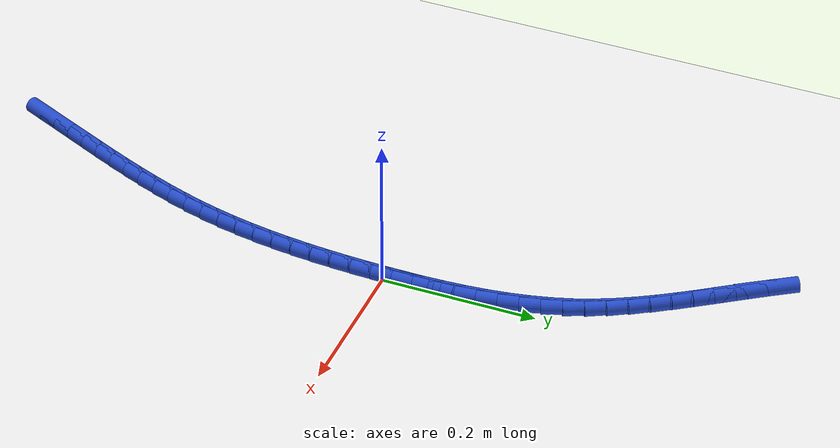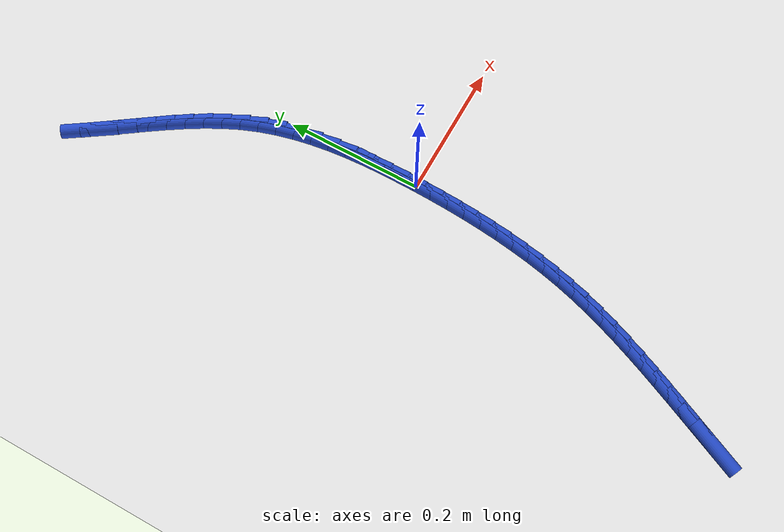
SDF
<sdf version="1.6">
 <world name="default">
  <model name="ground_plane">
   <static>1</static>
   <link name="link">
    <collision name="collision">
     <geometry><plane><normal>0 0 1</normal><size>100 100</size></plane></geometry>
     <surface><friction><ode><mu>100</mu><mu2>50</mu2></ode></friction></surface>
    </collision>
    <visual name="visual">
     <cast_shadows>0</cast_shadows>
     <geometry><plane><normal>0 0 1</normal><size>100 100</size></plane></geometry>
     <material>
      <script><uri>file://media/materials/scripts/gazebo.material</uri><name>Gazebo/WhiteGlow</name></script>
     </material>
    </visual>
   </link>
  </model>
  <model name="line">
   <link name="link_0">
    <pose>7.589415207398531e-18 -4.85722573273506e-17 0.01 0 1.57 1.5559141283545928</pose>
    <collision name="collision">
     <geometry><cylinder><radius>0.01</radius><length>0.08</length></cylinder></geometry>
    </collision>
    <visual name="visual">
     <material>
      <script><name>Gazebo/Blue</name><uri>file://media/materials/scripts/gazebo.material</uri></script>
     </material>
     <geometry><cylinder><radius>0.01</radius><length>0.08</length></cylinder></geometry>
    </visual>
   </link>
   <link name="link_1">
    <pose>0.00040557689589350803 0.027250473423718415 0.01 0 1.57 -1.5658515801947306</pose>
    <collision name="collision">
     <geometry><cylinder><radius>0.01</radius><length>0.08</length></cylinder></geometry>
    </collision>
    <visual name="visual">
     <material>
      <script><name>Gazebo/Blue</name><uri>file://media/materials/scripts/gazebo.material</uri></script>
     </material>
     <geometry><cylinder><radius>0.01</radius><length>0.08</length></cylinder></geometry>
    </visual>
   </link>
   <link name="link_2">
    <pose>0.0002706945214770803 0.05452816548895501 0.01 0 1.57 -1.5407802464279325</pose>
    <collision name="collision">
     <geometry><cylinder><radius>0.01</radius><length>0.08</length></cylinder></geometry>
    </collision>
    <visual name="visual">
     <material>
      <script><name>Gazebo/Blue</name><uri>file://media/materials/scripts/gazebo.material</uri></script>
     </material>
     <geometry><cylinder><radius>0.01</radius><length>0.08</length></cylinder></geometry>
    </visual>
   </link>
   <link name="link_3">
    <pose>-0.0005464384559750731 0.08174316324896835 0.01 0 1.57 -1.5102263849374125</pose>
    <collision name="collision">
     <geometry><cylinder><radius>0.01</radius><length>0.08</length></cylinder></geometry>
    </collision>
    <visual name="visual">
     <material>
      <script><name>Gazebo/Blue</name><uri>file://media/materials/scripts/gazebo.material</uri></script>
     </material>
     <geometry><cylinder><radius>0.01</radius><length>0.08</length></cylinder></geometry>
    </visual>
   </link>
   <link name="link_4">
    <pose>-0.0021876133691887483 0.10880555375701705 0.01 0 1.57 -1.4738963994273</pose>
    <collision name="collision">
     <geometry><cylinder><radius>0.01</radius><length>0.08</length></cylinder></geometry>
    </collision>
    <visual name="visual">
     <material>
      <script><name>Gazebo/Blue</name><uri>file://media/materials/scripts/gazebo.material</uri></script>
     </material>
     <geometry><cylinder><radius>0.01</radius><length>0.08</length></cylinder></geometry>
    </visual>
   </link>
   <link name="link_5">
    <pose>-0.004794621550889748 0.1356254240663597 0.01 0 1.57 -1.4314637257471108</pose>
    <collision name="collision">
     <geometry><cylinder><radius>0.01</radius><length>0.08</length></cylinder></geometry>
    </collision>
    <visual name="visual">
     <material>
      <script><name>Gazebo/Blue</name><uri>file://media/materials/scripts/gazebo.material</uri></script>
     </material>
     <geometry><cylinder><radius>0.01</radius><length>0.08</length></cylinder></geometry>
    </visual>
   </link>
   <link name="link_6">
    <pose>-0.008509254333803869 0.16211286123025492 0.01 0 1.57 -1.3826018676959457</pose>
    <collision name="collision">
     <geometry><cylinder><radius>0.01</radius><length>0.08</length></cylinder></geometry>
    </collision>
    <visual name="visual">
     <material>
      <script><name>Gazebo/Blue</name><uri>file://media/materials/scripts/gazebo.material</uri></script>
     </material>
     <geometry><cylinder><radius>0.01</radius><length>0.08</length></cylinder></geometry>
    </visual>
   </link>
   <link name="link_7">
    <pose>-0.013473303050656912 0.1881779523019613 0.01 0 1.57 -1.327031739205355</pose>
    <collision name="collision">
     <geometry><cylinder><radius>0.01</radius><length>0.08</length></cylinder></geometry>
    </collision>
    <visual name="visual">
     <material>
      <script><name>Gazebo/Blue</name><uri>file://media/materials/scripts/gazebo.material</uri></script>
     </material>
     <geometry><cylinder><radius>0.01</radius><length>0.08</length></cylinder></geometry>
    </visual>
   </link>
   <link name="link_8">
    <pose>-0.01982855903417467 0.21373078433473738 0.01 0 1.57 -1.2645858876567104</pose>
    <collision name="collision">
     <geometry><cylinder><radius>0.01</radius><length>0.08</length></cylinder></geometry>
    </collision>
    <visual name="visual">
     <material>
      <script><name>Gazebo/Blue</name><uri>file://media/materials/scripts/gazebo.material</uri></script>
     </material>
     <geometry><cylinder><radius>0.01</radius><length>0.08</length></cylinder></geometry>
    </visual>
   </link>
   <link name="link_9">
    <pose>-0.02771681361708296 0.2386814443818419 0.01 0 1.57 -1.1958644344702418</pose>
    <collision name="collision">
     <geometry><cylinder><radius>0.01</radius><length>0.08</length></cylinder></geometry>
    </collision>
    <visual name="visual">
     <material>
      <script><name>Gazebo/Blue</name><uri>file://media/materials/scripts/gazebo.material</uri></script>
     </material>
     <geometry><cylinder><radius>0.01</radius><length>0.08</length></cylinder></geometry>
    </visual>
   </link>
   <link name="link_10">
    <pose>-0.03726650261467369 0.2629470765192428 0.01 0 1.57 -1.130148149604443</pose>
    <collision name="collision">
     <geometry><cylinder><radius>0.01</radius><length>0.08</length></cylinder></geometry>
    </collision>
    <visual name="visual">
     <material>
      <script><name>Gazebo/Blue</name><uri>file://media/materials/scripts/gazebo.material</uri></script>
     </material>
     <geometry><cylinder><radius>0.01</radius><length>0.08</length></cylinder></geometry>
    </visual>
   </link>
   <link name="link_11">
    <pose>-0.04839899375615982 0.28655423909256245 0.01 0 1.57 -1.074982402908331</pose>
    <collision name="collision">
     <geometry><cylinder><radius>0.01</radius><length>0.08</length></cylinder></geometry>
    </collision>
    <visual name="visual">
     <material>
      <script><name>Gazebo/Blue</name><uri>file://media/materials/scripts/gazebo.material</uri></script>
     </material>
     <geometry><cylinder><radius>0.01</radius><length>0.08</length></cylinder></geometry>
    </visual>
   </link>
   <link name="link_12">
    <pose>-0.060872472729927005 0.3096157154382263 0.01 0 1.57 -1.0307120491372315</pose>
    <collision name="collision">
     <geometry><cylinder><radius>0.01</radius><length>0.08</length></cylinder></geometry>
    </collision>
    <visual name="visual">
     <material>
      <script><name>Gazebo/Blue</name><uri>file://media/materials/scripts/gazebo.material</uri></script>
     </material>
     <geometry><cylinder><radius>0.01</radius><length>0.08</length></cylinder></geometry>
    </visual>
   </link>
   <link name="link_13">
    <pose>-0.074440703302431 0.33224662542537986 0.01 0 1.57 -0.9972079564352885</pose>
    <collision name="collision">
     <geometry><cylinder><radius>0.01</radius><length>0.08</length></cylinder></geometry>
    </collision>
    <visual name="visual">
     <material>
      <script><name>Gazebo/Blue</name><uri>file://media/materials/scripts/gazebo.material</uri></script>
     </material>
     <geometry><cylinder><radius>0.01</radius><length>0.08</length></cylinder></geometry>
    </visual>
   </link>
   <link name="link_14">
    <pose>-0.08885744924012752 0.3545620889231687 0.01 0 1.57 -0.974215683335379</pose>
    <collision name="collision">
     <geometry><cylinder><radius>0.01</radius><length>0.08</length></cylinder></geometry>
    </collision>
    <visual name="visual">
     <material>
      <script><name>Gazebo/Blue</name><uri>file://media/materials/scripts/gazebo.material</uri></script>
     </material>
     <geometry><cylinder><radius>0.01</radius><length>0.08</length></cylinder></geometry>
    </visual>
   </link>
   <link name="link_15">
    <pose>-0.10387647430947233 0.37667722580073837 0.01 0 1.57 -0.9614695580251938</pose>
    <collision name="collision">
     <geometry><cylinder><radius>0.01</radius><length>0.08</length></cylinder></geometry>
    </collision>
    <visual name="visual">
     <material>
      <script><name>Gazebo/Blue</name><uri>file://media/materials/scripts/gazebo.material</uri></script>
     </material>
     <geometry><cylinder><radius>0.01</radius><length>0.08</length></cylinder></geometry>
    </visual>
   </link>
   <link name="link_16">
    <pose>-0.11925154227692127 0.39870715592723444 0.01 0 1.57 -0.9587638180564054</pose>
    <collision name="collision">
     <geometry><cylinder><radius>0.01</radius><length>0.08</length></cylinder></geometry>
    </collision>
    <visual name="visual">
     <material>
      <script><name>Gazebo/Blue</name><uri>file://media/materials/scripts/gazebo.material</uri></script>
     </material>
     <geometry><cylinder><radius>0.01</radius><length>0.08</length></cylinder></geometry>
    </visual>
   </link>
   <link name="link_17">
    <pose>-0.13473641690893007 0.42076699917180266 0.01 0 1.57 -0.9659876066157249</pose>
    <collision name="collision">
     <geometry><cylinder><radius>0.01</radius><length>0.08</length></cylinder></geometry>
    </collision>
    <visual name="visual">
     <material>
      <script><name>Gazebo/Blue</name><uri>file://media/materials/scripts/gazebo.material</uri></script>
     </material>
     <geometry><cylinder><radius>0.01</radius><length>0.08</length></cylinder></geometry>
    </visual>
   </link>
   <link name="link_18">
    <pose>-0.1500848619719544 0.44297187540358834 0.01 0 1.57 -0.9831299147734404</pose>
    <collision name="collision">
     <geometry><cylinder><radius>0.01</radius><length>0.08</length></cylinder></geometry>
    </collision>
    <visual name="visual">
     <material>
      <script><name>Gazebo/Blue</name><uri>file://media/materials/scripts/gazebo.material</uri></script>
     </material>
     <geometry><cylinder><radius>0.01</radius><length>0.08</length></cylinder></geometry>
    </visual>
   </link>
   <link name="link_230">
    <pose>-0.13704586516417733 -0.5109664755132463 0.01 0 1.57 1.142018270820775</pose>
    <collision name="collision">
     <geometry><cylinder><radius>0.01</radius><length>0.08</length></cylinder></geometry>
    </collision>
    <visual name="visual">
     <material>
      <script><name>Gazebo/Blue</name><uri>file://media/materials/scripts/gazebo.material</uri></script>
     </material>
     <geometry><cylinder><radius>0.01</radius><length>0.08</length></cylinder></geometry>
    </visual>
   </link>
   <link name="link_231">
    <pose>-0.1257469373504532 -0.48625007278549454 0.01 0 1.57 1.142138944315351</pose>
    <collision name="collision">
     <geometry><cylinder><radius>0.01</radius><length>0.08</length></cylinder></geometry>
    </collision>
    <visual name="visual">
     <material>
      <script><name>Gazebo/Blue</name><uri>file://media/materials/scripts/gazebo.material</uri></script>
     </material>
     <geometry><cylinder><radius>0.01</radius><length>0.08</length></cylinder></geometry>
    </visual>
   </link>
   <link name="link_232">
    <pose>-0.11448390128716632 -0.4616043182860404 0.01 0 1.57 1.1438738307428884</pose>
    <collision name="collision">
     <geometry><cylinder><radius>0.01</radius><length>0.08</length></cylinder></geometry>
    </collision>
    <visual name="visual">
     <material>
      <script><name>Gazebo/Blue</name><uri>file://media/materials/scripts/gazebo.material</uri></script>
     </material>
     <geometry><cylinder><radius>0.01</radius><length>0.08</length></cylinder></geometry>
    </visual>
   </link>
   <link name="link_233">
    <pose>-0.10330343192968487 -0.4370265351107504 0.01 0 1.57 1.1495445418979793</pose>
    <collision name="collision">
     <geometry><cylinder><radius>0.01</radius><length>0.08</length></cylinder></geometry>
    </collision>
    <visual name="visual">
     <material>
      <script><name>Gazebo/Blue</name><uri>file://media/materials/scripts/gazebo.material</uri></script>
     </material>
     <geometry><cylinder><radius>0.01</radius><length>0.08</length></cylinder></geometry>
    </visual>
   </link>
   <link name="link_234">
    <pose>-0.09230413211007793 -0.41247862583950967 0.01 0 1.57 1.1592075718121493</pose>
    <collision name="collision">
     <geometry><cylinder><radius>0.01</radius><length>0.08</length></cylinder></geometry>
    </collision>
    <visual name="visual">
     <material>
      <script><name>Gazebo/Blue</name><uri>file://media/materials/scripts/gazebo.material</uri></script>
     </material>
     <geometry><cylinder><radius>0.01</radius><length>0.08</length></cylinder></geometry>
    </visual>
   </link>
   <link name="link_235">
    <pose>-0.08158479749844834 -0.38792236151548193 0.01 0 1.57 1.1729134654645055</pose>
    <collision name="collision">
     <geometry><cylinder><radius>0.01</radius><length>0.08</length></cylinder></geometry>
    </collision>
    <visual name="visual">
     <material>
      <script><name>Gazebo/Blue</name><uri>file://media/materials/scripts/gazebo.material</uri></script>
     </material>
     <geometry><cylinder><radius>0.01</radius><length>0.08</length></cylinder></geometry>
    </visual>
   </link>
   <link name="link_236">
    <pose>-0.07124422376489878 -0.3633195131818307 0.01 0 1.57 1.1907107015923122</pose>
    <collision name="collision">
     <geometry><cylinder><radius>0.01</radius><length>0.08</length></cylinder></geometry>
    </collision>
    <visual name="visual">
     <material>
      <script><name>Gazebo/Blue</name><uri>file://media/materials/scripts/gazebo.material</uri></script>
     </material>
     <geometry><cylinder><radius>0.01</radius><length>0.08</length></cylinder></geometry>
    </visual>
   </link>
   <link name="link_237">
    <pose>-0.061381206579532104 -0.3386318518817197 0.01 0 1.57 1.2126388334691967</pose>
    <collision name="collision">
     <geometry><cylinder><radius>0.01</radius><length>0.08</length></cylinder></geometry>
    </collision>
    <visual name="visual">
     <material>
      <script><name>Gazebo/Blue</name><uri>file://media/materials/scripts/gazebo.material</uri></script>
     </material>
     <geometry><cylinder><radius>0.01</radius><length>0.08</length></cylinder></geometry>
    </visual>
   </link>
   <link name="link_238">
    <pose>-0.05209454161245104 -0.3138211486583124 0.01 0 1.57 1.2387192679844303</pose>
    <collision name="collision">
     <geometry><cylinder><radius>0.01</radius><length>0.08</length></cylinder></geometry>
    </collision>
    <visual name="visual">
     <material>
      <script><name>Gazebo/Blue</name><uri>file://media/materials/scripts/gazebo.material</uri></script>
     </material>
     <geometry><cylinder><radius>0.01</radius><length>0.08</length></cylinder></geometry>
    </visual>
   </link>
   <link name="link_239">
    <pose>-0.043483024533758435 -0.28884917455477277 0.01 0 1.57 1.26894372986522</pose>
    <collision name="collision">
     <geometry><cylinder><radius>0.01</radius><length>0.08</length></cylinder></geometry>
    </collision>
    <visual name="visual">
     <material>
      <script><name>Gazebo/Blue</name><uri>file://media/materials/scripts/gazebo.material</uri></script>
     </material>
     <geometry><cylinder><radius>0.01</radius><length>0.08</length></cylinder></geometry>
    </visual>
   </link>
   <link name="link_240">
    <pose>-0.03564545101355722 -0.2636777006142648 0.01 0 1.57 1.3031898094150753</pose>
    <collision name="collision">
     <geometry><cylinder><radius>0.01</radius><length>0.08</length></cylinder></geometry>
    </collision>
    <visual name="visual">
     <material>
      <script><name>Gazebo/Blue</name><uri>file://media/materials/scripts/gazebo.material</uri></script>
     </material>
     <geometry><cylinder><radius>0.01</radius><length>0.08</length></cylinder></geometry>
    </visual>
   </link>
   <link name="link_241">
    <pose>-0.028678845941883198 -0.23826910696669876 0.01 0 1.57 1.3387417425773052</pose>
    <collision name="collision">
     <geometry><cylinder><radius>0.01</radius><length>0.08</length></cylinder></geometry>
    </collision>
    <visual name="visual">
     <material>
      <script><name>Gazebo/Blue</name><uri>file://media/materials/scripts/gazebo.material</uri></script>
     </material>
     <geometry><cylinder><radius>0.01</radius><length>0.08</length></cylinder></geometry>
    </visual>
   </link>
   <link name="link_242">
    <pose>-0.022614887169702953 -0.2126082508503879 0.01 0 1.57 1.3721904682067385</pose>
    <collision name="collision">
     <geometry><cylinder><radius>0.01</radius><length>0.08</length></cylinder></geometry>
    </collision>
    <visual name="visual">
     <material>
      <script><name>Gazebo/Blue</name><uri>file://media/materials/scripts/gazebo.material</uri></script>
     </material>
     <geometry><cylinder><radius>0.01</radius><length>0.08</length></cylinder></geometry>
    </visual>
   </link>
   <link name="link_243">
    <pose>-0.017402331129409195 -0.18670851158728582 0.01 0 1.57 1.4032706878567711</pose>
    <collision name="collision">
     <geometry><cylinder><radius>0.01</radius><length>0.08</length></cylinder></geometry>
    </collision>
    <visual name="visual">
     <material>
      <script><name>Gazebo/Blue</name><uri>file://media/materials/scripts/gazebo.material</uri></script>
     </material>
     <geometry><cylinder><radius>0.01</radius><length>0.08</length></cylinder></geometry>
    </visual>
   </link>
   <link name="link_244">
    <pose>-0.012984585971714141 -0.16058510812220902 0.01 0 1.57 1.43195861532455</pose>
    <collision name="collision">
     <geometry><cylinder><radius>0.01</radius><length>0.08</length></cylinder></geometry>
    </collision>
    <visual name="visual">
     <material>
      <script><name>Gazebo/Blue</name><uri>file://media/materials/scripts/gazebo.material</uri></script>
     </material>
     <geometry><cylinder><radius>0.01</radius><length>0.08</length></cylinder></geometry>
    </visual>
   </link>
   <link name="link_245">
    <pose>-0.009305059847329994 -0.13425325939997393 0.01 0 1.57 1.4582525917006777</pose>
    <collision name="collision">
     <geometry><cylinder><radius>0.01</radius><length>0.08</length></cylinder></geometry>
    </collision>
    <visual name="visual">
     <material>
      <script><name>Gazebo/Blue</name><uri>file://media/materials/scripts/gazebo.material</uri></script>
     </material>
     <geometry><cylinder><radius>0.01</radius><length>0.08</length></cylinder></geometry>
    </visual>
   </link>
   <link name="link_246">
    <pose>-0.006307160906968957 -0.10772818436539697 0.01 0 1.57 1.4821680780888478</pose>
    <collision name="collision">
     <geometry><cylinder><radius>0.01</radius><length>0.08</length></cylinder></geometry>
    </collision>
    <visual name="visual">
     <material>
      <script><name>Gazebo/Blue</name><uri>file://media/materials/scripts/gazebo.material</uri></script>
     </material>
     <geometry><cylinder><radius>0.01</radius><length>0.08</length></cylinder></geometry>
    </visual>
   </link>
   <link name="link_247">
    <pose>-0.003934297301343233 -0.0810251019632946 0.01 0 1.57 1.503733018049364</pose>
    <collision name="collision">
     <geometry><cylinder><radius>0.01</radius><length>0.08</length></cylinder></geometry>
    </collision>
    <visual name="visual">
     <material>
      <script><name>Gazebo/Blue</name><uri>file://media/materials/scripts/gazebo.material</uri></script>
     </material>
     <geometry><cylinder><radius>0.01</radius><length>0.08</length></cylinder></geometry>
    </visual>
   </link>
   <link name="link_248">
    <pose>-0.002129877181165027 -0.05415923113848334 0.01 0 1.57 1.5229837060366833</pose>
    <collision name="collision">
     <geometry><cylinder><radius>0.01</radius><length>0.08</length></cylinder></geometry>
    </collision>
    <visual name="visual">
     <material>
      <script><name>Gazebo/Blue</name><uri>file://media/materials/scripts/gazebo.material</uri></script>
     </material>
     <geometry><cylinder><radius>0.01</radius><length>0.08</length></cylinder></geometry>
    </visual>
   </link>
   <link name="link_249">
    <pose>-0.0008373086971465407 -0.027145790835779574 0.01 0 1.57 1.539961221885998</pose>
    <collision name="collision">
     <geometry><cylinder><radius>0.01</radius><length>0.08</length></cylinder></geometry>
    </collision>
    <visual name="visual">
     <material>
      <script><name>Gazebo/Blue</name><uri>file://media/materials/scripts/gazebo.material</uri></script>
     </material>
     <geometry><cylinder><radius>0.01</radius><length>0.08</length></cylinder></geometry>
    </visual>
   </link>
   <link name="link_250">
    <pose>1.691355389077387e-17 1.6653345369377348e-16 0.01 0 1.57 1.5547084361038728</pose>
    <collision name="collision">
     <geometry><cylinder><radius>0.01</radius><length>0.08</length></cylinder></geometry>
    </collision>
    <visual name="visual">
     <material>
      <script><name>Gazebo/Blue</name><uri>file://media/materials/scripts/gazebo.material</uri></script>
     </material>
     <geometry><cylinder><radius>0.01</radius><length>0.08</length></cylinder></geometry>
    </visual>
   </link>
   <link name="link_251">
    <pose>0.0004386407595624467 0.027262922424039486 0.01 0 1.57 1.5672675545507975</pose>
    <collision name="collision">
     <geometry><cylinder><radius>0.01</radius><length>0.08</length></cylinder></geometry>
    </collision>
    <visual name="visual">
     <material>
      <script><name>Gazebo/Blue</name><uri>file://media/materials/scripts/gazebo.material</uri></script>
     </material>
     <geometry><cylinder><radius>0.01</radius><length>0.08</length></cylinder></geometry>
    </visual>
   </link>
   <link name="link_252">
    <pose>0.000535205430828544 0.054627757491521906 0.01 0 1.57 1.5609993237315751</pose>
    <collision name="collision">
     <geometry><cylinder><radius>0.01</radius><length>0.08</length></cylinder></geometry>
    </collision>
    <visual name="visual">
     <material>
      <script><name>Gazebo/Blue</name><uri>file://media/materials/scripts/gazebo.material</uri></script>
     </material>
     <geometry><cylinder><radius>0.01</radius><length>0.08</length></cylinder></geometry>
    </visual>
   </link>
  </model>
 </world>
</sdf>
